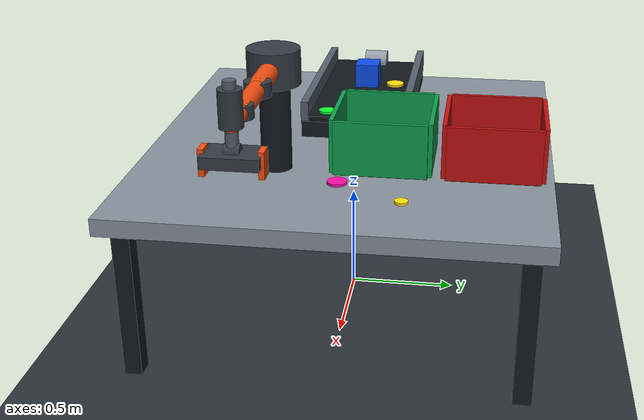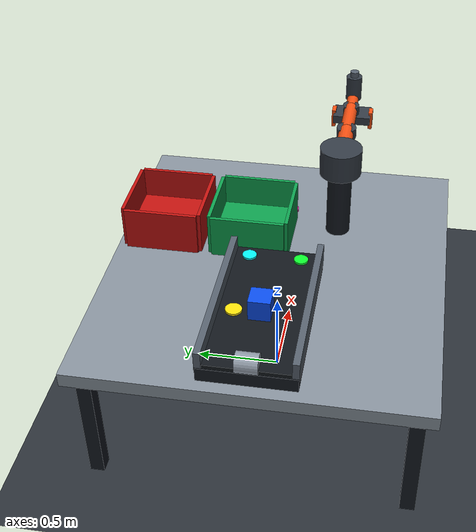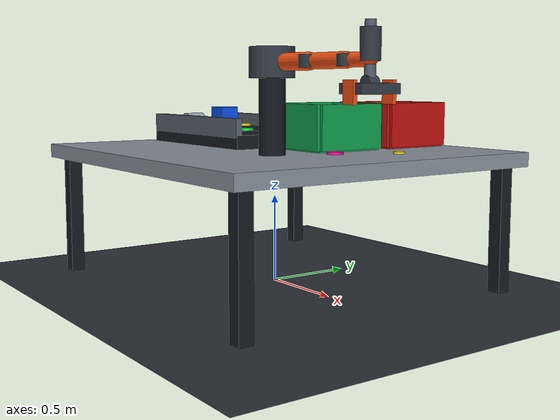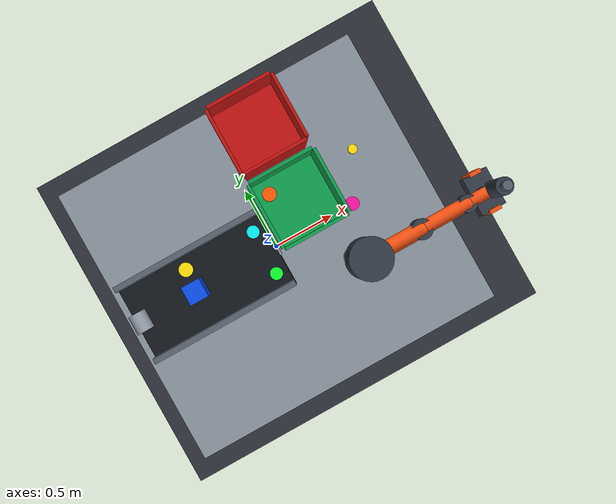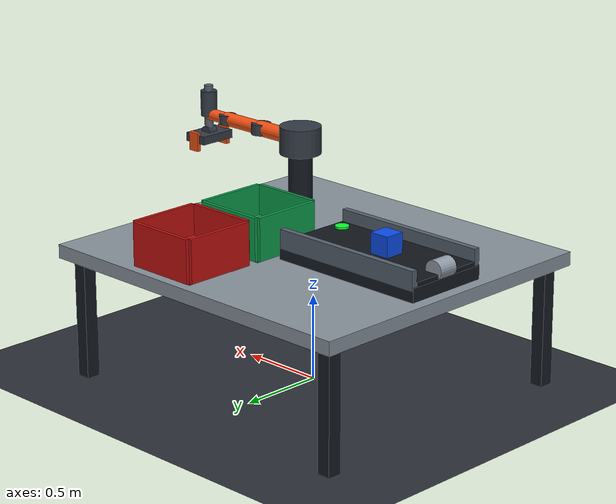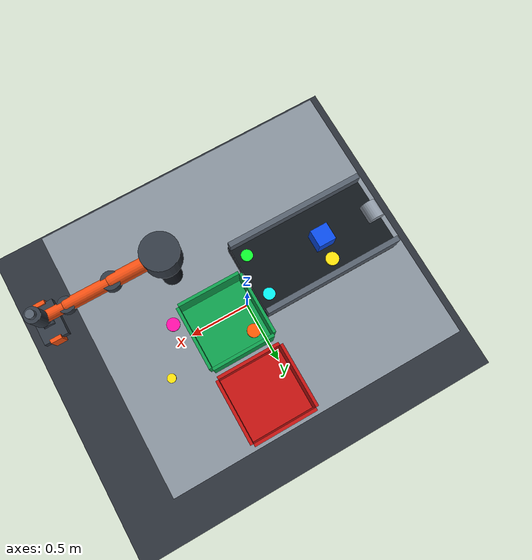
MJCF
<mujoco model="conveyor_robot_handoff_cell">
  <compiler angle="radian" autolimits="true"/>
  <option timestep="0.002" gravity="0 0 -9.81" integrator="implicitfast" solver="Newton" cone="elliptic"/>
  <size nconmax="500" njmax="1000"/>
  <statistic center="0 0.10 0.88" extent="1.60"/>
  <visual>
    <global offwidth="640" offheight="480"/>
    <quality shadowsize="2048"/>
    <map znear="0.01" zfar="8"/>
    <headlight ambient="0.30 0.31 0.34" diffuse="0.72 0.74 0.76" specular="0.18 0.18 0.20"/>
  </visual>

  <asset>
    <texture name="ground_tex" type="2d" builtin="checker" rgb1="0.12 0.14 0.17" rgb2="0.22 0.24 0.27" width="512" height="512"/>
    <material name="ground_mat" texture="ground_tex" texrepeat="5 5" reflectance="0.08"/>
    <material name="bench_mat" rgba="0.53 0.57 0.61 1" specular="0.18" roughness="0.62"/>
    <material name="frame_mat" rgba="0.08 0.10 0.13 1" specular="0.20" roughness="0.48"/>
    <material name="belt_mat" rgba="0.07 0.09 0.11 1" specular="0.12" roughness="0.82"/>
    <material name="rail_mat" rgba="0.34 0.38 0.43 1" specular="0.22" roughness="0.52"/>
    <material name="roller_mat" rgba="0.57 0.61 0.66 1" specular="0.34" roughness="0.32"/>
    <material name="arm_mat" rgba="0.95 0.31 0.07 1" specular="0.35" roughness="0.30"/>
    <material name="arm_dark_mat" rgba="0.20 0.23 0.27 1" specular="0.25" roughness="0.42"/>
    <material name="parcel_mat" rgba="0.04 0.30 0.92 1" specular="0.34" roughness="0.28"/>
    <material name="target_bin_mat" rgba="0.05 0.62 0.30 1" specular="0.24" roughness="0.42"/>
    <material name="distractor_mat" rgba="0.76 0.07 0.06 1" specular="0.24" roughness="0.42"/>
    <material name="marker_yellow" rgba="1 0.88 0.04 1" emission="0.35"/>
    <material name="marker_cyan" rgba="0.02 0.95 0.95 1" emission="0.35"/>
    <material name="marker_green" rgba="0.05 1 0.18 1" emission="0.35"/>
    <material name="marker_magenta" rgba="1 0.05 0.65 1" emission="0.35"/>
    <material name="marker_orange" rgba="1 0.35 0.02 1" emission="0.35"/>
  </asset>

  <default>
    <geom friction="0.72 0.01 0.002" condim="6" solref="0.008 1" solimp="0.90 0.95 0.001"/>
    <default class="world_part">
      <geom contype="1" conaffinity="7"/>
    </default>
    <default class="robot_part">
      <geom contype="2" conaffinity="7"/>
    </default>
    <default class="payload_part">
      <geom contype="4" conaffinity="7"/>
    </default>
  </default>

  <worldbody>
    <light name="key_light" pos="-1.2 -1.1 2.8" dir="0.35 0.32 -1" directional="true" castshadow="true"/>
    <light name="fill_light" pos="1.4 0.3 2.0" dir="-0.7 -0.2 -1" directional="true" diffuse="0.42 0.44 0.48" specular="0.08 0.08 0.08"/>
    <camera name="handoff_camera" pos="2.1258 -2.2258 2.5989" quat="0.8258179558 0.4483825660 0.1631979076 0.3005731548" fovy="45"/>
    <geom name="ground_geom" type="plane" size="3 3 0.1" material="ground_mat" class="world_part"/>

    <body name="workbench" pos="0 0 0.74" childclass="world_part">
      <geom name="workbench_top_geom" type="box" size="1.05 0.95 0.04" material="bench_mat" friction="0.90 0.01 0.001"/>
      <geom name="workbench_leg_fl" type="box" pos="-0.95 -0.85 -0.37" size="0.04 0.04 0.37" material="frame_mat"/>
      <geom name="workbench_leg_fr" type="box" pos="0.95 -0.85 -0.37" size="0.04 0.04 0.37" material="frame_mat"/>
      <geom name="workbench_leg_bl" type="box" pos="-0.95 0.85 -0.37" size="0.04 0.04 0.37" material="frame_mat"/>
      <geom name="workbench_leg_br" type="box" pos="0.95 0.85 -0.37" size="0.04 0.04 0.37" material="frame_mat"/>
    </body>

    <body name="conveyor_frame" pos="-0.49 0 0.82" childclass="world_part">
      <geom name="conveyor_frame_geom" type="box" size="0.49 0.26 0.04" material="frame_mat" friction="0.82 0.01 0.001"/>
      <geom name="belt_surface_geom" type="box" pos="0 0 0.052" size="0.485 0.225 0.012" material="belt_mat" friction="0.95 0.01 0.001"/>
      <geom name="conveyor_left_rail" type="box" pos="0 0.245 0.08" size="0.485 0.018 0.055" material="rail_mat"/>
      <geom name="conveyor_right_rail" type="box" pos="0 -0.245 0.08" size="0.485 0.018 0.055" material="rail_mat"/>
    </body>
    <!-- Head and tail rollers. The collision cylinder is spun about its own
         symmetry axis, so its swept volume is the cylinder itself and the
         clearances below hold at every drive angle. -->
    <body name="conveyor_drive" pos="-0.94 0 0.90" childclass="robot_part">
      <joint name="conveyor_drive_hinge" type="hinge" axis="0 1 0" damping="0.12" armature="0.008"/>
      <geom name="conveyor_drive_geom" type="cylinder" size="0.055 0.06" quat="0.70710678 0.70710678 0 0" mass="0.35" material="roller_mat"/>
    </body>
    <body name="conveyor_tail" pos="-0.03 0 0.838" childclass="world_part">
      <geom name="conveyor_tail_geom" type="cylinder" size="0.04 0.06" quat="0.70710678 0.70710678 0 0" material="roller_mat"/>
    </body>

    <body name="arm_base" pos="0.40 -0.30 1.26" childclass="robot_part">
      <geom name="arm_pedestal_geom" type="cylinder" pos="0 0 -0.28" size="0.07 0.20" material="frame_mat"/>
      <geom name="arm_base_geom" type="cylinder" size="0.12 0.08" material="arm_dark_mat"/>
      <body name="arm_link1" pos="0 0 0">
        <joint name="arm_shoulder" type="hinge" axis="0 0 1" range="-3.05 3.05" damping="1.5" armature="0.015"/>
        <geom name="arm_link1_geom" type="capsule" fromto="0 0 0 0.32 0 0" size="0.045" mass="0.65" material="arm_mat"/>
        <geom name="arm_shoulder_hub" type="cylinder" size="0.065 0.035" mass="0.28" material="arm_dark_mat"/>
        <body name="arm_link2" pos="0.32 0 0">
          <joint name="arm_elbow" type="hinge" axis="0 0 1" range="-2.8 2.8" damping="1.2" armature="0.012"/>
          <geom name="arm_link2_geom" type="capsule" fromto="0 0 0 0.28 0 0" size="0.040" mass="0.52" material="arm_mat"/>
          <geom name="arm_elbow_hub" type="cylinder" size="0.058 0.032" mass="0.22" material="arm_dark_mat"/>
          <body name="arm_link3" pos="0.28 0 0">
            <joint name="arm_wrist" type="hinge" axis="0 0 1" range="-2.8 2.8" damping="1.0" armature="0.010"/>
            <geom name="arm_link3_geom" type="capsule" fromto="0 0 0 0.16 0 0" size="0.035" mass="0.30" material="arm_mat"/>
            <geom name="arm_wrist_hub" type="cylinder" size="0.050 0.028" mass="0.16" material="arm_dark_mat"/>
            <geom name="lift_sleeve" type="cylinder" pos="0.16 0 0.067" size="0.048 0.075" mass="0.26" material="arm_dark_mat"/>
            <body name="arm_lift" pos="0.16 0 -0.075" gravcomp="1">
              <joint name="tool_z" type="slide" axis="0 0 1" range="-0.14 0.09" damping="3.0" armature="0.008"/>
              <geom name="lift_ram" type="cylinder" pos="0 0 0.11" size="0.026 0.14" mass="0.22" material="rail_mat"/>
              <body name="arm_tool" pos="0 0 -0.030" gravcomp="1">
                <joint name="tool_pitch" type="hinge" axis="0 1 0" range="-0.35 0.35" damping="2.5" armature="0.006"/>
                <geom name="tool_pitch_hub" type="cylinder" zaxis="0 1 0" size="0.034 0.030" mass="0.12" material="arm_dark_mat"/>
                <geom name="tool_palm_geom" type="box" pos="0 0 -0.025" size="0.075 0.115 0.025" mass="0.24" material="arm_dark_mat"/>
                <body name="left_finger" pos="0 0 -0.04" gravcomp="1">
                  <joint name="gripper_left_slide" type="slide" axis="0 1 0" range="-0.045 0" damping="2.0" armature="0.004"/>
                  <geom name="left_finger_geom" type="box" pos="0 0.116 0" size="0.035 0.012 0.055" mass="0.08" material="arm_mat"/>
                </body>
                <body name="right_finger" pos="0 0 -0.04" gravcomp="1">
                  <joint name="gripper_right_slide" type="slide" axis="0 1 0" range="0 0.045" damping="2.0" armature="0.004"/>
                  <geom name="right_finger_geom" type="box" pos="0 -0.116 0" size="0.035 0.012 0.055" mass="0.08" material="arm_mat"/>
                </body>
                <site name="arm_tcp" type="sphere" pos="0 0 -0.115" size="0.012" rgba="1 0.45 0.02 0.4" group="4"/>
              </body>
            </body>
          </body>
        </body>
      </body>
    </body>

    <body name="blue_parcel" pos="-0.55 0 0.944" childclass="payload_part">
      <freejoint name="parcel_free"/>
      <geom name="blue_parcel_geom" type="box" size="0.06 0.06 0.06" mass="0.22" material="parcel_mat" friction="0.76 0.01 0.002"/>
    </body>

    <body name="blue_target_bin" pos="0.25 0.18 0.78" childclass="world_part">
      <geom name="blue_bin_bottom" type="box" pos="0 0 0.04" size="0.21 0.21 0.04" material="target_bin_mat" friction="0.78 0.01 0.002"/>
      <geom name="blue_bin_left" type="box" pos="-0.22 0 0.135" size="0.01 0.21 0.125" material="target_bin_mat"/>
      <geom name="blue_bin_right" type="box" pos="0.22 0 0.135" size="0.01 0.21 0.125" material="target_bin_mat"/>
      <geom name="blue_bin_front" type="box" pos="0 -0.22 0.135" size="0.21 0.01 0.125" material="target_bin_mat"/>
      <geom name="blue_bin_back" type="box" pos="0 0.22 0.135" size="0.21 0.01 0.125" material="target_bin_mat"/>
      <!-- Release decal, flush on the bin floor. Offset into the far corner so
           it clears both the settled parcel footprint and the shadow the near
           rim casts along the camera ray. -->
      <site name="parcel_release_marker" type="cylinder" pos="-0.13 0.12 0.086" size="0.045 0.006" material="marker_orange" group="2"/>
    </body>
    <body name="red_distractor_bin" pos="0.25 0.68 0.78" childclass="world_part">
      <geom name="red_bin_bottom" type="box" pos="0 0 0.04" size="0.21 0.21 0.04" material="distractor_mat"/>
      <geom name="red_bin_left" type="box" pos="-0.22 0 0.135" size="0.01 0.21 0.125" material="distractor_mat"/>
      <geom name="red_bin_right" type="box" pos="0.22 0 0.135" size="0.01 0.21 0.125" material="distractor_mat"/>
      <geom name="red_bin_front" type="box" pos="0 -0.22 0.135" size="0.21 0.01 0.125" material="distractor_mat"/>
      <geom name="red_bin_back" type="box" pos="0 0.22 0.135" size="0.21 0.01 0.125" material="distractor_mat"/>
    </body>

    <site name="conveyor_start_marker" type="cylinder" pos="-0.55 0.145 0.890" size="0.045 0.006" material="marker_yellow" group="2"/>
    <site name="parcel_approach_marker" type="cylinder" pos="-0.08 0.145 0.890" size="0.040 0.006" material="marker_cyan" group="2"/>
    <site name="parcel_grasp_marker" type="cylinder" pos="-0.08 -0.145 0.890" size="0.040 0.006" material="marker_green" group="2"/>
    <site name="target_bin_approach_marker" type="cylinder" pos="0.55 0 0.786" size="0.045 0.006" material="marker_magenta" group="2"/>
    <site name="handoff_inspection_marker" type="cylinder" pos="0.72 0.30 0.786" size="0.030 0.006" material="marker_yellow" group="2"/>
  </worldbody>

  <contact>
    <exclude name="drive_frame_nest" body1="conveyor_drive" body2="conveyor_frame"/>
    <exclude name="base_shoulder_nest" body1="arm_base" body2="arm_link1"/>
    <exclude name="shoulder_elbow_nest" body1="arm_link1" body2="arm_link2"/>
    <exclude name="elbow_wrist_nest" body1="arm_link2" body2="arm_link3"/>
    <exclude name="lift_sleeve_nest" body1="arm_link3" body2="arm_lift"/>
    <exclude name="lift_pitch_nest" body1="arm_link3" body2="arm_tool"/>
    <exclude name="pitch_hub_nest" body1="arm_lift" body2="arm_tool"/>
    <exclude name="left_jaw_palm_nest" body1="arm_tool" body2="left_finger"/>
    <exclude name="right_jaw_palm_nest" body1="arm_tool" body2="right_finger"/>
  </contact>

  <equality>
    <weld name="parcel_grasp" body1="arm_tool" body2="blue_parcel" relpose="0 0 -0.115 1 0 0 0"
          active="false" solref="0.01 1" solimp="0.96 0.99 0.001"/>
  </equality>

  <actuator>
    <velocity name="conveyor_motor" joint="conveyor_drive_hinge" kv="0.35" ctrlrange="-30 30"/>
    <position name="shoulder_motor" joint="arm_shoulder" kp="140" kv="14" ctrlrange="-3.05 3.05"/>
    <position name="elbow_motor" joint="arm_elbow" kp="140" kv="14" ctrlrange="-2.8 2.8"/>
    <position name="wrist_motor" joint="arm_wrist" kp="110" kv="11" ctrlrange="-2.8 2.8"/>
    <position name="tool_lift_motor" joint="tool_z" kp="900" kv="52" ctrlrange="-0.14 0.09"/>
    <position name="tool_pitch_motor" joint="tool_pitch" kp="90" kv="9" ctrlrange="-0.35 0.35"/>
    <position name="gripper_left_motor" joint="gripper_left_slide" kp="260" kv="16" ctrlrange="-0.045 0"/>
    <position name="gripper_right_motor" joint="gripper_right_slide" kp="260" kv="16" ctrlrange="0 0.045"/>
  </actuator>
</mujoco>
